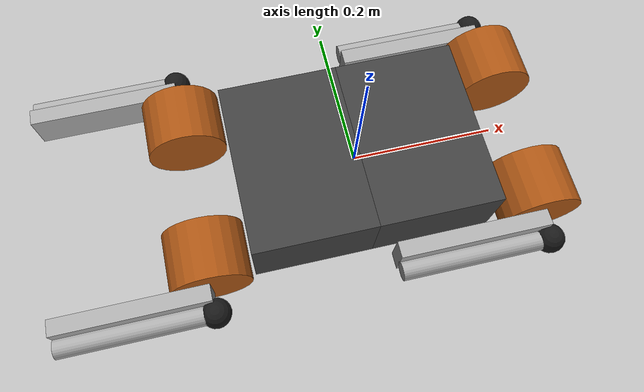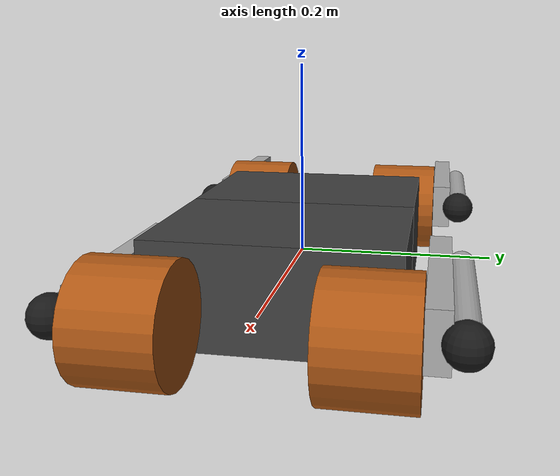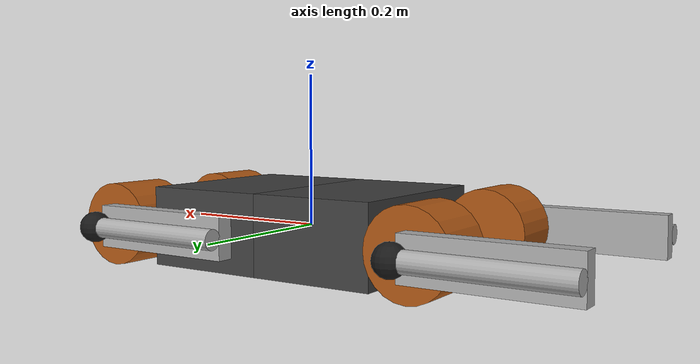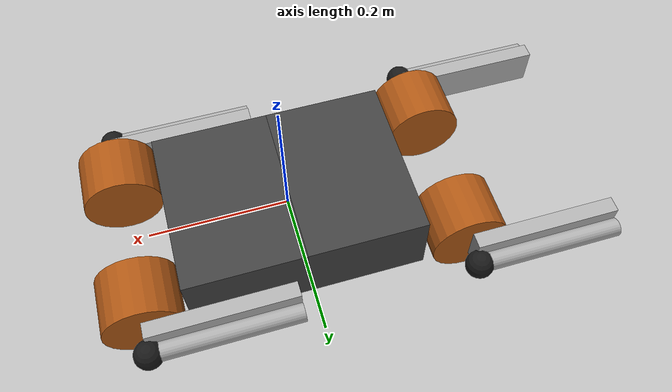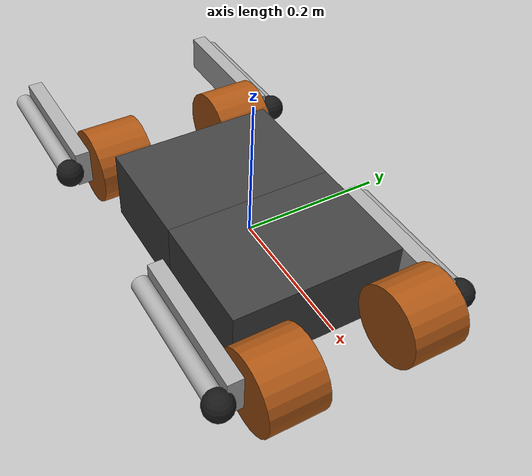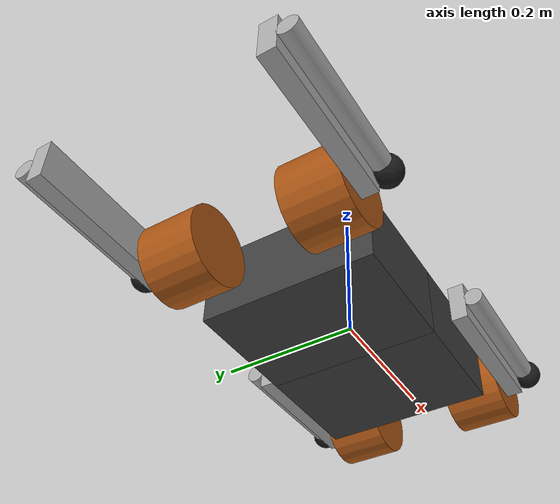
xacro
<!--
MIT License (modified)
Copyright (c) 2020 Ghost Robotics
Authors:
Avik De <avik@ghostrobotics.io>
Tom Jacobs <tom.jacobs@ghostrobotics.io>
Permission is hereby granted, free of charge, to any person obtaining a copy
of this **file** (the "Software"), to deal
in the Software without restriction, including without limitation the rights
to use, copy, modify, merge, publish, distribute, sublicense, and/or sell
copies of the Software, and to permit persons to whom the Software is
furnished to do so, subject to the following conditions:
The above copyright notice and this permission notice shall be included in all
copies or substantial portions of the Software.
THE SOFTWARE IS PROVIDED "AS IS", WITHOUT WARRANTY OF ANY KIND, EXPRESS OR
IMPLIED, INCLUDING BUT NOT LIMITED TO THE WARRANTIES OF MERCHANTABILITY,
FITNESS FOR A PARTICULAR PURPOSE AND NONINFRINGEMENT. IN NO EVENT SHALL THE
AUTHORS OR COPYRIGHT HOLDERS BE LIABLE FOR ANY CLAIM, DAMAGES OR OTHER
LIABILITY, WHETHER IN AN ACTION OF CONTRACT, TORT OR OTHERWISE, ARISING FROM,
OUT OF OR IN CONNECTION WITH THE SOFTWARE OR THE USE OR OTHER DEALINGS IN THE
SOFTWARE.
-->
<?xml version="1.0"?>

<robot xmlns:xacro="http://www.ros.org/wiki/xacro" name="spirit">

	<!-- Define parameters -->
	<!-- bodyLength + hipdx should be equal to front to back hip distance -->
	<!-- dy +  dPodAxisToEdge + upperLegWidth should be equal to the center to toe distance along y axis-->
	<xacro:property name="pi" value="3.14159265359"/>
	<xacro:property name="bodyLength" value="0.335"/>
	<xacro:property name="bodyWidth" value="0.24"/>
	<xacro:property name="bodyHeight" value="0.104"/>
	<xacro:property name="bodyMass" value="5.75"/>
	<xacro:property name="podMass" value="0.575"/>
	<xacro:property name="upperLegMass" value="0.775"/>
	<xacro:property name="upperLegIxx" value="0.00005"/> <!-- guess -->
	<xacro:property name="upperLegIyy" value="0.001"/> <!-- guess -->
	<xacro:property name="upperLegIzz" value="0.001"/> <!-- guess -->
	<xacro:property name="lowerLegMass" value="0.075"/>
	<xacro:property name="lowerLegIxx" value="0.000005"/> <!-- guess -->
	<xacro:property name="lowerLegIyy" value="0.0001"/> <!-- guess -->
	<xacro:property name="lowerLegIzz" value="0.0001"/> <!-- guess -->
	<xacro:property name="toeMass" value="0.015"/>
	<xacro:property name="upperLegLength" value="0.206"/>
	<xacro:property name="upperLegWidth" value="0.022"/>
	<xacro:property name="upperLegHeight" value="0.055"/>
	<xacro:property name="lowerLegLength" value="0.206"/>
	<xacro:property name="lowerLegRadius" value="0.013"/> <!--visual only-->
	<xacro:property name="podLength" value="0.08"/>
	<xacro:property name="podRadius" value="0.055"/>
	<xacro:property name="dPodAxisToEdge" value="0.028"/> <!--center of pod cylinder to the ab axis-->
	<xacro:property name="abOffs" value="0.10098"/>
	<xacro:property name="dx" value="0.2263"/>
	<xacro:property name="dy" value="0.07"/>
	<xacro:property name="toeRadius" value="0.02"/>
	<xacro:property name="toeOffset" value="0.0"/>
	<xacro:property name="toeStiffness" value="30000.0"/>
	<xacro:property name="toeDamping" value="1000.0"/>
	<xacro:property name="toeSpinningFriction" value="0.3"/>
	<xacro:property name="toeFriction" value="100.0"/>
	<xacro:property name="toeLateralFriction" value="50.0"/>
	<xacro:property name="abKinLimit" value="0.707"/>
	<xacro:property name="abSpeedLimit" value="30"/>
	<xacro:property name="abEffortLimit" value="40"/>
	<xacro:property name="jointSpeedLimit" value="30"/>
	<xacro:property name="jointEffortLimit" value="40"/>
	<xacro:property name="spineKinLimit" value="0.707"/>
	<xacro:property name="spineSpeedLimit" value="30"/>
	<xacro:property name="spineEffortLimit" value="40"/>

	<xacro:property name="bodyColor" value="darkgray"/>
	<xacro:property name="hipColor" value="copper"/>
	<xacro:property name="upperLegColor" value="silver"/>
	<xacro:property name="lowerLegColor" value="silver"/>
	<xacro:property name="toeColor" value="black"/>

	<material name="blue">
      <color rgba="0 0 0.8 1"/>
    </material>
	<material name="black">
      <color rgba="0.1 0.1 0.1 1"/>
    </material>
	<material name="darkgray">
      <color rgba="0.25 0.25 0.25 1"/>
    </material>
	<material name="copper">
      <color rgba="0.68 0.34 0.08 1"/>
    </material>
	<material name="silver">
      <color rgba="0.68 0.68 0.68 1"/>
    </material>
	<!-- First body segment-->
	<link name="base_link">
	</link>

	<!-- First body segment-->
	<link name="body">
		<visual>
			<origin rpy="0 0 0" xyz="0 0 0"/>
			<geometry>
				<box size="${bodyLength/2} ${bodyWidth} ${bodyHeight}"/>
			</geometry>
			<material name="${bodyColor}"/>
		</visual>

		<inertial>
			<mass value="${bodyMass/2}"/>
			<!-- Uniform box -->
			<inertia ixx="0.025"  ixy="0"  ixz="0" iyy="0.0156" iyz="0" izz="0.0252" />
		</inertial>

		<!-- Just copy geometry for collision -->
		<collision>
		<origin rpy="0 0 0" xyz="0 0 0"/>
			<geometry>
				<box size="${bodyLength/2} ${bodyWidth} ${bodyHeight}"/>
			</geometry>
		</collision>
	</link>

	<!-- Fixed rear body displacement -->
		<joint name="fixed_rear" type="fixed">
			<parent link="base_link"/>
			<child link="body"/>
			<origin xyz="${-bodyLength/4} 0 0"/>
	</joint>

	<!-- Second body segment-->
	<link name="second_body_segment">
		<visual>
			<origin rpy="0 0 0" xyz="0 0 0"/>
			<geometry>
				<box size="${bodyLength/2} ${bodyWidth} ${bodyHeight}"/>
			</geometry>
			<material name="${bodyColor}"/>
		</visual>

		<inertial>
			<mass value="${bodyMass/2}"/>
			<!-- Uniform box -->
			<inertia ixx="0.025"  ixy="0"  ixz="0" iyy="0.0156" iyz="0" izz="0.0252" />
		</inertial>

		<!-- Just copy geometry for collision -->
		<collision>
		<origin rpy="0 0 0" xyz="${bodyLength/4} 0 0"/>
			<geometry>
				<box size="${bodyLength/2} ${bodyWidth} ${bodyHeight}"/>
			</geometry>
		</collision>
	</link>

	<!-- body twist joint. Joint name: 12 -->
		<joint name="joint_12" type="revolute">
			<parent link="base_link"/>
			<child link="second_body_segment"/>
			<axis xyz="1 0 0"/>
			<origin xyz="${bodyLength/4} 0 0"/>
			<limit upper="${spineKinLimit}" lower="${-spineKinLimit}" effort="${spineEffortLimit}" velocity="${spineSpeedLimit}"/>
			<dynamics damping="0.0" friction="0.0"/>
	</joint>

	<!-- Transmission elements required for Gazebo -->
	<transmission name="transmission_12">
		<type>transmission_interface/SimpleTransmission</type>
		<joint name="joint_12">
		</joint>
		<actuator name="motor_12">
			<mechanicalReduction>1</mechanicalReduction>
		</actuator>
	</transmission>

	<!-- Define our leg macro -->
	<xacro:macro name="leg" params="which_base suffix left front hipJointName kneeJointName abductionJointName hipJointLowerLimit hipJointUpperLimit color">

		<!-- Hip motor -->
		<link name="hip${suffix}">
			<visual>
				<origin rpy="${pi/2} 0 0" xyz="${front * 0} ${left * (dPodAxisToEdge)} 0"/>
				<geometry>
					<cylinder length="${podLength}" radius="${podRadius}"/>
				</geometry>
				<material name="${hipColor}"/>
			</visual>

			<collision>
				<origin rpy="${pi/2} 0 0" xyz="0 ${left * (dPodAxisToEdge)} 0"/>
				<geometry>
					<cylinder length="${podLength}" radius="${podRadius}"/>
				</geometry>
			</collision>

			<inertial>
				<mass value="${podMass}"/>
				<inertia ixx="0.00066963541"  ixy="0"  ixz="0" iyy="0.00066963541" iyz="0" izz="0.0008696875" />
			</inertial>
		</link>

		<!-- Abduction joint. Joint names are: 8 9 10 11 -->
		<joint name="joint_${abductionJointName}" type="revolute">
			<parent link="${which_base}"/>
			<child link="hip${suffix}"/>
			<axis xyz="1 0 0"/>
			<origin xyz="${front * (dx-bodyLength/4)} ${left * dy} 0"/>
			<limit effort="${abEffortLimit}" velocity="${abSpeedLimit}" lower="${-abKinLimit}" upper="${abKinLimit}"/>
			<dynamics damping="0.0" friction="0.0"/>
		</joint>

		<!-- Transmission elements required for Gazebo -->
		<transmission name="transmission_${abductionJointName}">
    		<type>transmission_interface/SimpleTransmission</type>
    		<joint name="joint_${abductionJointName}">
    		</joint>
    		<actuator name="motor_${abductionJointName}">
      			<mechanicalReduction>1</mechanicalReduction>
    		</actuator>
  		</transmission>

		<!-- Upper leg -->
		<link name="upper${suffix}">
			<visual>
				<origin rpy="0 0 0" xyz="-${upperLegLength/2} ${-left*upperLegWidth} 0"/>
				<geometry>
					<box size="${upperLegLength} ${upperLegWidth} ${upperLegHeight}"/>
				</geometry>
				<material name="${upperLegColor}"/>
			</visual>

			<collision>
				<origin rpy="0 0 0" xyz="-${upperLegLength/2} ${-left*upperLegWidth} 0"/>
				<geometry>
					<box size="${upperLegLength} ${upperLegWidth} ${upperLegHeight}"/>
				</geometry>
			</collision>

			<inertial>
				<mass value="${upperLegMass}"/>
				<inertia ixx="${upperLegIxx}"  ixy="0" ixz="0" iyy="${upperLegIyy}" iyz="0" izz="${upperLegIzz}"/>
			</inertial>
		</link>

		<!-- Hip joint. (Motor to upper leg). Joint names are: 0 2 4 6 -->
		<joint name="joint_${hipJointName}" type="revolute">
			<parent link="hip${suffix}"/>
			<child link="upper${suffix}"/>
			<axis xyz="0 -1 0"/>
			<origin xyz="${front * 0} ${left * abOffs} 0"/> <!--  rpy="0 -0.3 0" -->
			<limit effort="${jointEffortLimit}" velocity="${jointSpeedLimit}" lower="${hipJointLowerLimit}" upper="${hipJointUpperLimit}"/>
			<dynamics damping="0.0" friction="0.0"/>
		</joint>

		<!-- Transmission elements required for Gazebo -->
		<transmission name="transmission_${hipJointName}">
    		<type>transmission_interface/SimpleTransmission</type>
    		<joint name="joint_${hipJointName}">
    		</joint>
    		<actuator name="motor_${hipJointName}">
      			<mechanicalReduction>1</mechanicalReduction>
    		</actuator>
  		</transmission>

		<!-- Lower leg -->
		<link name="lower${suffix}">
			<visual>
				<origin rpy="0 ${pi/2} 0" xyz="${lowerLegLength/2} 0 0"/>
				<geometry>
					<cylinder length="${lowerLegLength}" radius="${lowerLegRadius}"/>
				</geometry>
				<material name="${lowerLegColor}"/>
			</visual>

			<collision>
				<origin rpy="0 ${pi/2} 0" xyz="${lowerLegLength/2} 0 0"/>
				<geometry>
					<cylinder length="${lowerLegLength}" radius="${lowerLegRadius}"/>
				</geometry>
			</collision>

			<inertial>
				<mass value="${lowerLegMass}"/>
				<inertia ixx="${lowerLegIxx}"  ixy="0" ixz="0" iyy="${lowerLegIyy}" iyz="0" izz="${lowerLegIzz}"/>
			</inertial>
		</link>

		<!-- Knee joint. Joint names are: 1 3 5 7 -->
		<joint name="joint_${kneeJointName}" type="revolute">
			<parent link="upper${suffix}"/>
			<child link="lower${suffix}"/>
			<axis xyz="0 1 0"/>
			<origin xyz="-${upperLegLength} 0 0"/> <!--rpy="0 0.5 0"-->
			<limit effort="${jointEffortLimit}" velocity="${jointSpeedLimit}" lower="0" upper="${pi}"/>
			<dynamics damping="0.0" friction="0.0"/>
		</joint>

		<!-- Transmission elements required for Gazebo -->
		<transmission name="transmission_${kneeJointName}">
    		<type>transmission_interface/SimpleTransmission</type>
    		<joint name="joint_${kneeJointName}">
    		</joint>
    		<actuator name="motor_${kneeJointName}">
      			<mechanicalReduction>1.5</mechanicalReduction> <!-- Spirit knees have a 1.5 reduction from the original modules-->
    		</actuator>
  		</transmission>

		<!-- Toe -->
		<link name="toe${suffix}">
			<contact>
				<friction_anchor/>
				<stiffness value="${toeStiffness}"/>
				<damping value="${toeDamping}"/>
				<spinning_friction value="${toeSpinningFriction}"/>
				<lateral_friction value="${toeLateralFriction}"/>
			</contact>
			<visual>
				<origin rpy="0 0 0" xyz="0 0 0"/>
				<geometry>
					<sphere radius="${toeRadius}"/>
				</geometry>
				<material name="${toeColor}"/>
			</visual>

			<collision>
				<origin rpy="0 0 0" xyz="0 0 0"/>
				<geometry>
					<sphere radius="${toeRadius}"/>
				</geometry>
			</collision>

			<inertial>
				<mass value="${toeMass}"/>
				<inertia ixx="0.000025"  ixy="0"  ixz="0" iyy="0.000025" iyz="0" izz="0.000025" />
			</inertial>
		</link>

		<joint name="jtoe${suffix}" type="fixed">
			<parent link="lower${suffix}"/>
			<child link="toe${suffix}"/>
			<origin xyz="${lowerLegLength} 0 -${toeOffset}"/>
			<dynamics damping="0.0" friction="0.0"/>
		</joint>

	</xacro:macro>

	<!-- Our four legs -->
	<xacro:leg which_base="second_body_segment" suffix="0" hipJointName="0" kneeJointName="1" abductionJointName="8" front="1" left="1" hipJointLowerLimit="${-2*pi}" hipJointUpperLimit="${2*pi}" color="darkgray"/>
 	<xacro:leg which_base="body" suffix="1" hipJointName="2" kneeJointName="3" abductionJointName="9" front="-1" left="1" hipJointLowerLimit="${-2*pi}" hipJointUpperLimit="${2*pi}" color="darkgray"/>
 	<xacro:leg which_base="second_body_segment" suffix="2" hipJointName="4" kneeJointName="5" abductionJointName="10" front="1" left="-1" hipJointLowerLimit="${-2*pi}" hipJointUpperLimit="${2*pi}" color="red"/>
 	<xacro:leg which_base="body" suffix="3" hipJointName="6" kneeJointName="7" abductionJointName="11" front="-1" left="-1" hipJointLowerLimit="${-2*pi}" hipJointUpperLimit="${2*pi}" color="darkgray"/>

</robot>
